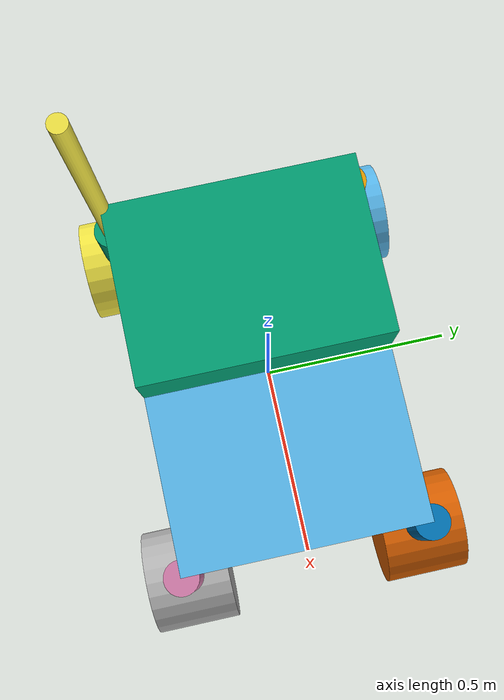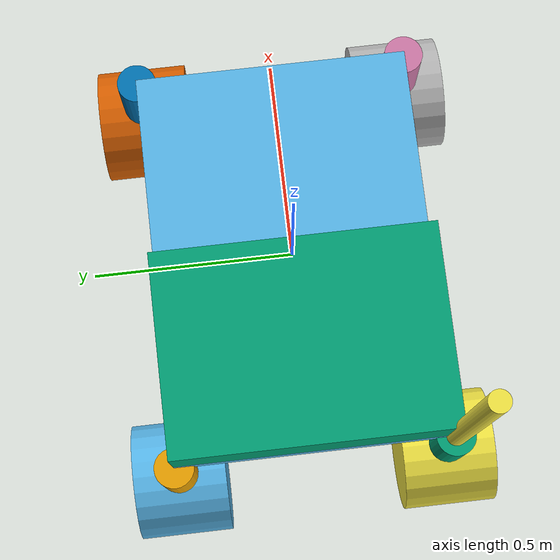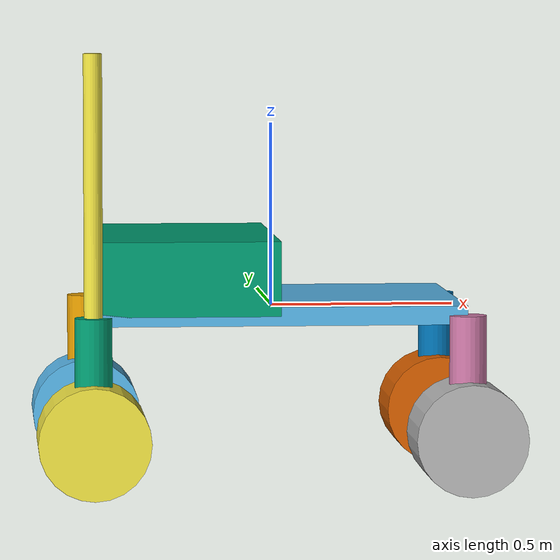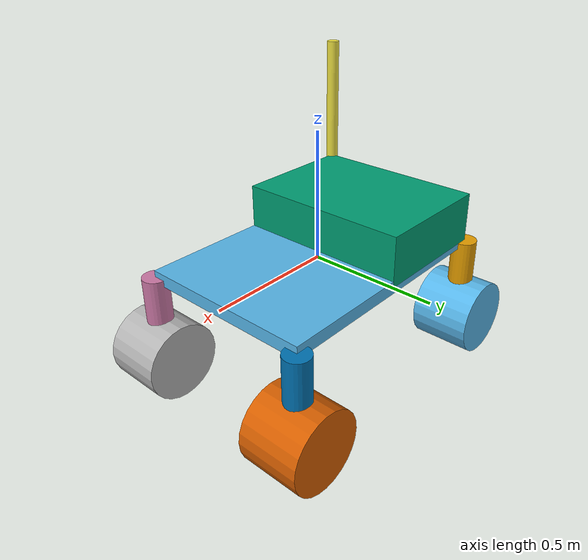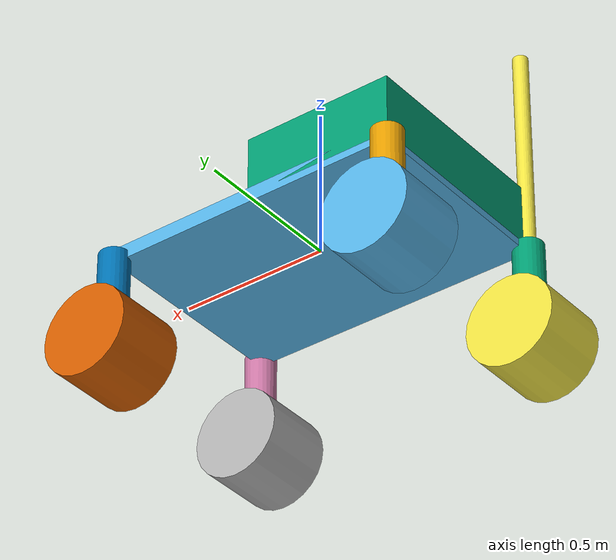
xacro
<?xml version="1.0"?>

<robot name = "test_rover" xmlns:xacro="http://www.ros.org/wiki/xacro">

    <!-- ==== IMPORTS ==== -->
    <xacro:include filename="$(find simulation)/urdf/test_rover/components/leg.xacro"/>
    <xacro:include filename="$(find simulation)/urdf/util/materials.xacro"/>
    <xacro:include filename="$(find simulation)/urdf/util/inertia_macros.xacro"/>

    <!-- ====ROVER BODY ==== -->

    <!-- BODY Definition -->
    <xacro:property name="body_size_x" value = "1.0"/>
    <xacro:property name="body_size_y" value = "0.7"/>
    <xacro:property name="body_size_z" value = "0.05"/>
    <xacro:property name="body_mass" value = "1"/>

    <xacro:property name="electrical_box_size_x" value = "0.5"/>
    <xacro:property name="electrical_box_size_y" value = "0.7"/>
    <xacro:property name="electrical_box_size_z" value = "0.2"/>
    <xacro:property name="electrical_box_mass" value = "0.5"/>

    <xacro:property name="antenna_radius" value = "0.025"/>
    <xacro:property name="antenna_length" value = "0.7"/>
    <xacro:property name="antenna_mass" value = "0.1"/>

    <link name = "base_link"/>

    <!-- Body Base -->
    <link name = "body">
        <visual>
            <geometry><box size="${body_size_x} ${body_size_y} ${body_size_z}"/></geometry>
        </visual>
        <collision>
            <geometry><box size="${body_size_x} ${body_size_y} ${body_size_z}"/></geometry>
        </collision>
        <inertial>
            <mass value = "${body_mass}"/>
            <xacro:intertia_rectangle
            m= "${body_mass}"
            w = "${body_size_x}"
            h = "${body_size_y}"
            d = "${body_size_z}"/>
        </inertial>
    </link>

    <!-- Electronics Box -->
    <link name = "body_electronic_box">
        <visual>
            <geometry><box size="${electrical_box_size_x} ${electrical_box_size_y} ${electrical_box_size_z}"/></geometry>
        </visual>
        <collision>
            <geometry><box size="${electrical_box_size_x} ${electrical_box_size_y} ${electrical_box_size_z}"/></geometry>
        </collision>
        <inertial>
            <mass value = "${electrical_box_mass}"/>
            <xacro:intertia_rectangle
            m= "${electrical_box_mass}"
            w = "${electrical_box_size_x}"
            h = "${electrical_box_size_y}"
            d = "${electrical_box_size_z}"/>
        </inertial>
    </link>

    <!-- Antenna Box -->
    <link name = "body_antenna">
        <visual>
            <geometry><cylinder radius = "${antenna_radius}" length = "${antenna_length}"/></geometry>
        </visual>
        <collision>
            <geometry><cylinder radius = "${antenna_radius}" length = "${antenna_length}"/></geometry>
        </collision>
        <inertial>
            <mass value = "${antenna_mass}"/>
            <xacro:intertia_cylinder
            m= "${antenna_mass}"
            r = "${antenna_radius}"
            h = "${antenna_length}"/>
        </inertial>
    </link>

    <!-- Legs -->
    <xacro:make_leg
        prefix = "FR"
        x_offset = "${body_size_x/2}"
        y_offset = "${body_size_y/2}"
        z_offset = "${body_size_z/2}"/>

    <xacro:make_leg
        prefix = "FL"
        x_offset = "${body_size_x/2}"
        y_offset = "${-body_size_y/2}"
        z_offset = "${body_size_z/2}"/>

    <xacro:make_leg
        prefix = "BR"
        x_offset = "${-body_size_x/2}"
        y_offset = "${body_size_y/2}"
        z_offset = "${body_size_z/2}"/>

    <xacro:make_leg
        prefix = "BL"
        x_offset = "${-body_size_x/2}"
        y_offset = "${-body_size_y/2}"
        z_offset = "${body_size_z/2}"/>

    <!-- JOINTS -->
    <joint name="base_to_body" type="fixed">
        <parent link="base_link"/>
        <child link="body"/>
        <origin xyz="0 0 0" rpy="0 0 0"/>
    </joint>

    <joint name="body_to_electrical_box" type="fixed">
        <parent link="body"/>
        <child link="body_electronic_box"/>
        <origin xyz = "${-electrical_box_size_x/2} ${0} ${electrical_box_size_z/2}" rpy="0 0 0"/>
    </joint>

    <joint name="body_to_antenna" type="fixed">
        <parent link="body"/>
        <child link="body_antenna"/>
        <origin xyz = "${-body_size_x/2} ${-body_size_y/2} ${antenna_length/2}" rpy="0 0 0"/>
    </joint>
</robot>

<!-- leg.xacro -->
<robot xmlns:xacro="http://www.ros.org/wiki/xacro">
    <!-- General Definitions -->
    <xacro:property name="leg_main_shaft_length" value = "0.4"/>
    <xacro:property name="leg_main_shaft_radius" value = "0.05"/>
    <xacro:property name="leg_main_shaft_mass" value = "0.5"/>

    <xacro:property name="wheel_radius" value = "0.15"/>
    <xacro:property name="wheel_length" value = "0.24"/>
    <xacro:property name="wheel_mass" value = "0.5"/>

    <xacro:macro name = "make_leg" params = "prefix x_offset y_offset z_offset">
        <!-- Main Leg Stem -->
        <link name = "${prefix}_leg" >
            <visual>
                <pose xyz="0 0 0"/>
                <geometry>
                    <cylinder radius = "${leg_main_shaft_radius}" length = "${leg_main_shaft_length}" />
                </geometry>
            </visual>
            <collision>
                <pose xyz="0 0 0"/>
                <geometry>
                    <cylinder radius = "${leg_main_shaft_radius}" length = "${leg_main_shaft_length}" />
                </geometry>
            </collision>
            <inertial>
                <mass value = "${leg_main_shaft_mass}"/>
                <xacro:intertia_cylinder
                m= "${leg_main_shaft_mass}"
                r = "${leg_main_shaft_radius}"
                h = "${leg_main_shaft_length}"/>
            </inertial>
        </link>

        <!-- Main Wheel -->
        <link name = "${prefix}_wheel" >
            <visual>
                <origin rpy="1.57075 1.57075 0"/>
                <geometry>
                    <cylinder radius = "${wheel_radius}" length = "${wheel_length}" />
                </geometry>
            </visual>
            <collision>
                <origin rpy="1.57075 1.57075 0"/>
                <geometry>
                    <cylinder radius = "${wheel_radius}" length = "${wheel_length}" />
                </geometry>
            </collision>
            <inertial>
                <mass value = "${wheel_mass}"/>
                <xacro:intertia_cylinder
                m= "${wheel_mass}"
                r = "${wheel_radius}"
                h = "${wheel_length}"/>
            </inertial>
        </link>

        <!-- JOINTS -->
        <joint name = "${prefix}_leg_to_body" type="revolute">
            <parent link="body"/>
            <child link="${prefix}_leg"/>
            <axis xyz="0 0 1"/>
            <limit effort = "30" velocity = "1.0" lower="-1.57" upper="1.57"/>
            <origin xyz="${x_offset} ${y_offset} ${-leg_main_shaft_length/2}" rpy="0 0 0"/>
        </joint>
        <joint name = "${prefix}_wheel_to_leg" type="revolute">
            <parent link="${prefix}_leg"/>
            <child link="${prefix}_wheel"/>
            <axis xyz="0 1 0"/>
            <limit effort = "30" velocity = "1.0" lower="-1.57" upper="1.57"/>
            <origin xyz="0 0 ${-leg_main_shaft_length/2 + wheel_radius/2}"/>
        </joint>
    </xacro:macro>
</robot>

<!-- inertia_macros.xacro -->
<robot xmlns:xacro="http://www.ros.org/wiki/xacro">
    <!--
    Generates inertia tensor for basic uniform rectangle

    @param m : mass of rectangle
    @param h : height of rectangle
    @param w : width of rectangle
    @param d : depth of rectangle
    -->
    <xacro:macro name = "intertia_rectangle" params = "m h w d">
        <inertia
                ixx = "${ 1 / 12 * m * (h*h + d*d)}"
                ixy = "0"
                ixz = "0"
                iyy = "${ 1 / 12 * m * (w*w + d*d)}"
                iyz = "0"
                izz = "${ 1 / 12 * m * (w*w + h*h)}"
        />
    </xacro:macro>

    <!--
    Generates inertia tensor for basic uniform cylinder

    @param m : mass of cylinder
    @param r : radius of cylinder
    @param h : height of cylinder
    -->
    <xacro:macro name = "intertia_cylinder" params = "m r h">
        <inertia
                ixx = "${1/12*m*(3*r*r + h*h)}"
                ixy = "0"
                ixz = "0"
                iyy = "${1/12*m*(3*r*r + h*h)}"
                iyz = "0"
                izz = "${1/2*m*r*r}"
        />
    </xacro:macro>

</robot>
